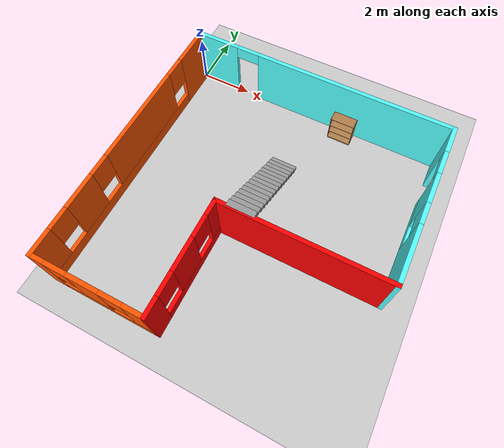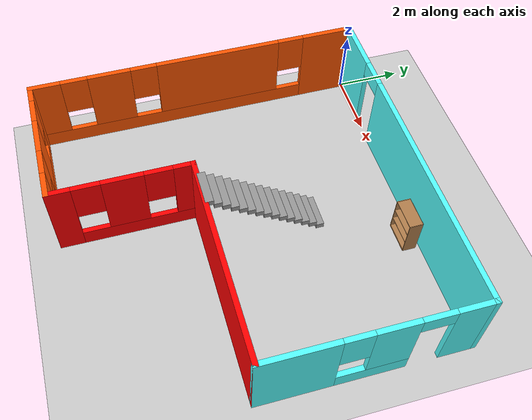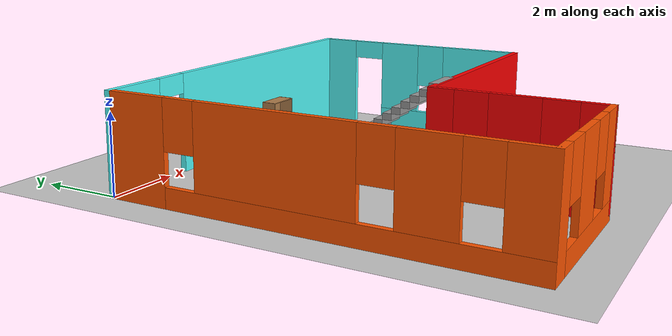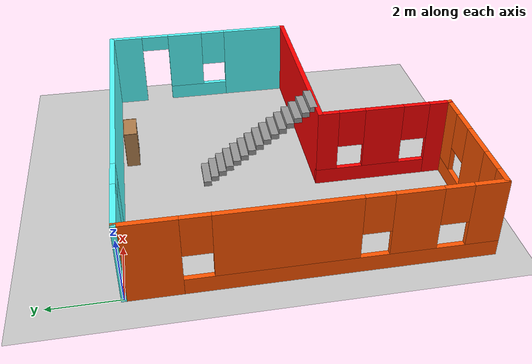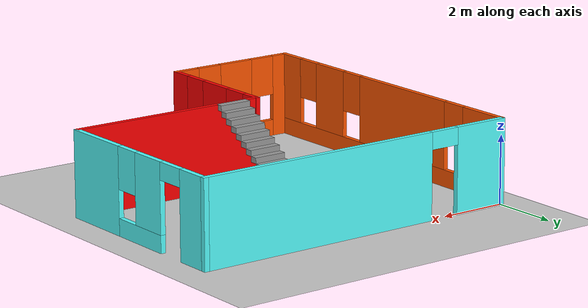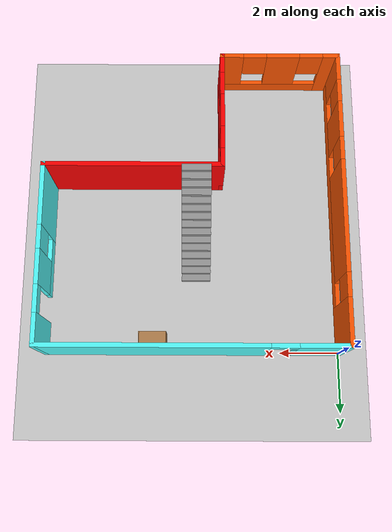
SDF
<sdf version="1.6">
 <world name="default">
  <model name="ground_plane">
   <static>1</static>
   <link name="link">
    <collision name="collision">
     <geometry><plane><normal>0 0 1</normal><size>100 100</size></plane></geometry>
     <surface>
      <contact><collide_bitmask>65535</collide_bitmask></contact>
      <friction><ode><mu>0.1</mu><mu2>0.1</mu2></ode></friction>
     </surface>
    </collision>
    <visual name="visual">
     <cast_shadows>0</cast_shadows>
     <geometry><plane><normal>0 0 1</normal><size>100 100</size></plane></geometry>
     <material>
      <script><uri>file://media/materials/scripts/gazebo.material</uri><name>Gazebo/Grey</name></script>
     </material>
    </visual>
   </link>
  </model>
  <model name="newworld">
   <pose>5 -5 0 0 -0 0</pose>
   <link name="Stairs_0">
    <visual name="Stairs_0_Visual_0">
     <pose>-0.121331 2.37416 0.083333 0 -0 0</pose>
     <geometry><box><size>1 0.233333 0.166667</size></box></geometry>
     <material>
      <script><uri>file://media/materials/scripts/gazebo.material</uri><name>Gazebo/Grey</name></script>
      <ambient>1 1 1 1</ambient>
     </material>
     <meta><layer>0</layer></meta>
    </visual>
    <collision name="Stairs_0_Collision_0">
     <geometry><box><size>1 0.233333 0.166667</size></box></geometry>
     <pose>-0.121331 2.37416 0.083333 0 -0 0</pose>
    </collision>
    <visual name="Stairs_0_Visual_1">
     <pose>-0.121331 2.14083 0.25 0 -0 0</pose>
     <geometry><box><size>1 0.233333 0.166667</size></box></geometry>
     <material>
      <script><uri>file://media/materials/scripts/gazebo.material</uri><name>Gazebo/Grey</name></script>
      <ambient>1 1 1 1</ambient>
     </material>
     <meta><layer>0</layer></meta>
    </visual>
    <collision name="Stairs_0_Collision_1">
     <geometry><box><size>1 0.233333 0.166667</size></box></geometry>
     <pose>-0.121331 2.14083 0.25 0 -0 0</pose>
    </collision>
    <visual name="Stairs_0_Visual_2">
     <pose>-0.121331 1.90749 0.416667 0 -0 0</pose>
     <geometry><box><size>1 0.233333 0.166667</size></box></geometry>
     <material>
      <script><uri>file://media/materials/scripts/gazebo.material</uri><name>Gazebo/Grey</name></script>
      <ambient>1 1 1 1</ambient>
     </material>
     <meta><layer>0</layer></meta>
    </visual>
    <collision name="Stairs_0_Collision_2">
     <geometry><box><size>1 0.233333 0.166667</size></box></geometry>
     <pose>-0.121331 1.90749 0.416667 0 -0 0</pose>
    </collision>
    <visual name="Stairs_0_Visual_3">
     <pose>-0.121331 1.67416 0.583333 0 -0 0</pose>
     <geometry><box><size>1 0.233333 0.166667</size></box></geometry>
     <material>
      <script><uri>file://media/materials/scripts/gazebo.material</uri><name>Gazebo/Grey</name></script>
      <ambient>1 1 1 1</ambient>
     </material>
     <meta><layer>0</layer></meta>
    </visual>
    <collision name="Stairs_0_Collision_3">
     <geometry><box><size>1 0.233333 0.166667</size></box></geometry>
     <pose>-0.121331 1.67416 0.583333 0 -0 0</pose>
    </collision>
    <visual name="Stairs_0_Visual_4">
     <pose>-0.121331 1.44083 0.75 0 -0 0</pose>
     <geometry><box><size>1 0.233333 0.166667</size></box></geometry>
     <material>
      <script><uri>file://media/materials/scripts/gazebo.material</uri><name>Gazebo/Grey</name></script>
      <ambient>1 1 1 1</ambient>
     </material>
     <meta><layer>0</layer></meta>
    </visual>
    <collision name="Stairs_0_Collision_4">
     <geometry><box><size>1 0.233333 0.166667</size></box></geometry>
     <pose>-0.121331 1.44083 0.75 0 -0 0</pose>
    </collision>
    <visual name="Stairs_0_Visual_5">
     <pose>-0.121331 1.20749 0.916667 0 -0 0</pose>
     <geometry><box><size>1 0.233333 0.166667</size></box></geometry>
     <material>
      <script><uri>file://media/materials/scripts/gazebo.material</uri><name>Gazebo/Grey</name></script>
      <ambient>1 1 1 1</ambient>
     </material>
     <meta><layer>0</layer></meta>
    </visual>
    <collision name="Stairs_0_Collision_5">
     <geometry><box><size>1 0.233333 0.166667</size></box></geometry>
     <pose>-0.121331 1.20749 0.916667 0 -0 0</pose>
    </collision>
    <visual name="Stairs_0_Visual_6">
     <pose>-0.121331 0.97416 1.08333 0 -0 0</pose>
     <geometry><box><size>1 0.233333 0.166667</size></box></geometry>
     <material>
      <script><uri>file://media/materials/scripts/gazebo.material</uri><name>Gazebo/Grey</name></script>
      <ambient>1 1 1 1</ambient>
     </material>
     <meta><layer>0</layer></meta>
    </visual>
    <collision name="Stairs_0_Collision_6">
     <geometry><box><size>1 0.233333 0.166667</size></box></geometry>
     <pose>-0.121331 0.97416 1.08333 0 -0 0</pose>
    </collision>
    <visual name="Stairs_0_Visual_7">
     <pose>-0.121331 0.740827 1.25 0 -0 0</pose>
     <geometry><box><size>1 0.233333 0.166667</size></box></geometry>
     <material>
      <script><uri>file://media/materials/scripts/gazebo.material</uri><name>Gazebo/Grey</name></script>
      <ambient>1 1 1 1</ambient>
     </material>
     <meta><layer>0</layer></meta>
    </visual>
    <collision name="Stairs_0_Collision_7">
     <geometry><box><size>1 0.233333 0.166667</size></box></geometry>
     <pose>-0.121331 0.740827 1.25 0 -0 0</pose>
    </collision>
    <visual name="Stairs_0_Visual_8">
     <pose>-0.121331 0.507494 1.41667 0 -0 0</pose>
     <geometry><box><size>1 0.233333 0.166667</size></box></geometry>
     <material>
      <script><uri>file://media/materials/scripts/gazebo.material</uri><name>Gazebo/Grey</name></script>
      <ambient>1 1 1 1</ambient>
     </material>
     <meta><layer>0</layer></meta>
    </visual>
    <collision name="Stairs_0_Collision_8">
     <geometry><box><size>1 0.233333 0.166667</size></box></geometry>
     <pose>-0.121331 0.507494 1.41667 0 -0 0</pose>
    </collision>
    <visual name="Stairs_0_Visual_9">
     <pose>-0.121331 0.274161 1.58333 0 -0 0</pose>
     <geometry><box><size>1 0.233333 0.166667</size></box></geometry>
     <material>
      <script><uri>file://media/materials/scripts/gazebo.material</uri><name>Gazebo/Grey</name></script>
      <ambient>1 1 1 1</ambient>
     </material>
     <meta><layer>0</layer></meta>
    </visual>
    <collision name="Stairs_0_Collision_9">
     <geometry><box><size>1 0.233333 0.166667</size></box></geometry>
     <pose>-0.121331 0.274161 1.58333 0 -0 0</pose>
    </collision>
    <visual name="Stairs_0_Visual_10">
     <pose>-0.121331 0.040827 1.75 0 -0 0</pose>
     <geometry><box><size>1 0.233333 0.166667</size></box></geometry>
     <material>
      <script><uri>file://media/materials/scripts/gazebo.material</uri><name>Gazebo/Grey</name></script>
      <ambient>1 1 1 1</ambient>
     </material>
     <meta><layer>0</layer></meta>
    </visual>
    <collision name="Stairs_0_Collision_10">
     <geometry><box><size>1 0.233333 0.166667</size></box></geometry>
     <pose>-0.121331 0.040827 1.75 0 -0 0</pose>
    </collision>
    <visual name="Stairs_0_Visual_11">
     <pose>-0.121331 -0.192506 1.91667 0 -0 0</pose>
     <geometry><box><size>1 0.233333 0.166667</size></box></geometry>
     <material>
      <script><uri>file://media/materials/scripts/gazebo.material</uri><name>Gazebo/Grey</name></script>
      <ambient>1 1 1 1</ambient>
     </material>
     <meta><layer>0</layer></meta>
    </visual>
    <collision name="Stairs_0_Collision_11">
     <geometry><box><size>1 0.233333 0.166667</size></box></geometry>
     <pose>-0.121331 -0.192506 1.91667 0 -0 0</pose>
    </collision>
    <visual name="Stairs_0_Visual_12">
     <pose>-0.121331 -0.425839 2.08333 0 -0 0</pose>
     <geometry><box><size>1 0.233333 0.166667</size></box></geometry>
     <material>
      <script><uri>file://media/materials/scripts/gazebo.material</uri><name>Gazebo/Grey</name></script>
      <ambient>1 1 1 1</ambient>
     </material>
     <meta><layer>0</layer></meta>
    </visual>
    <collision name="Stairs_0_Collision_12">
     <geometry><box><size>1 0.233333 0.166667</size></box></geometry>
     <pose>-0.121331 -0.425839 2.08333 0 -0 0</pose>
    </collision>
    <visual name="Stairs_0_Visual_13">
     <pose>-0.121331 -0.659173 2.25 0 -0 0</pose>
     <geometry><box><size>1 0.233333 0.166667</size></box></geometry>
     <material>
      <script><uri>file://media/materials/scripts/gazebo.material</uri><name>Gazebo/Grey</name></script>
      <ambient>1 1 1 1</ambient>
     </material>
     <meta><layer>0</layer></meta>
    </visual>
    <collision name="Stairs_0_Collision_13">
     <geometry><box><size>1 0.233333 0.166667</size></box></geometry>
     <pose>-0.121331 -0.659173 2.25 0 -0 0</pose>
    </collision>
    <visual name="Stairs_0_Visual_14">
     <pose>-0.121331 -0.892506 2.41667 0 -0 0</pose>
     <geometry><box><size>1 0.233333 0.166667</size></box></geometry>
     <material>
      <script><uri>file://media/materials/scripts/gazebo.material</uri><name>Gazebo/Grey</name></script>
      <ambient>1 1 1 1</ambient>
     </material>
     <meta><layer>0</layer></meta>
    </visual>
    <collision name="Stairs_0_Collision_14">
     <geometry><box><size>1 0.233333 0.166667</size></box></geometry>
     <pose>-0.121331 -0.892506 2.41667 0 -0 0</pose>
    </collision>
   </link>
   <link name="Wall_0">
    <pose>-5 0 0 0 0 -1.5708</pose>
    <visual name="Wall_0_Visual_0">
     <pose>-4.2609 0 1.25 0 -0 0</pose>
     <geometry><box><size>1.6282 0.15 2.5</size></box></geometry>
     <material>
      <script><uri>file://media/materials/scripts/gazebo.material</uri><name>Gazebo/Grey</name></script>
      <ambient>1 0.333333 0 1</ambient>
     </material>
     <meta><layer>0</layer></meta>
    </visual>
    <collision name="Wall_0_Collision_0">
     <geometry><box><size>1.6282 0.15 2.5</size></box></geometry>
     <pose>-4.2609 0 1.25 0 -0 0</pose>
    </collision>
    <visual name="Wall_0_Visual_1">
     <pose>0.814102 0 0.25 0 -0 0</pose>
     <geometry><box><size>8.52179 0.15 0.5</size></box></geometry>
     <material>
      <script><uri>file://media/materials/scripts/gazebo.material</uri><name>Gazebo/Grey</name></script>
      <ambient>1 0.333333 0 1</ambient>
     </material>
     <meta><layer>0</layer></meta>
    </visual>
    <collision name="Wall_0_Collision_1">
     <geometry><box><size>8.52179 0.15 0.5</size></box></geometry>
     <pose>0.814102 0 0.25 0 -0 0</pose>
    </collision>
    <visual name="Wall_0_Visual_2">
     <pose>-0.720599 0 1.5 0 -0 0</pose>
     <geometry><box><size>3.85239 0.15 2</size></box></geometry>
     <material>
      <script><uri>file://media/materials/scripts/gazebo.material</uri><name>Gazebo/Grey</name></script>
      <ambient>1 0.333333 0 1</ambient>
     </material>
     <meta><layer>0</layer></meta>
    </visual>
    <collision name="Wall_0_Collision_2">
     <geometry><box><size>3.85239 0.15 2</size></box></geometry>
     <pose>-0.720599 0 1.5 0 -0 0</pose>
    </collision>
    <visual name="Wall_0_Visual_3">
     <pose>2.65744 0 1.5 0 -0 0</pose>
     <geometry><box><size>1.30369 0.15 2</size></box></geometry>
     <material>
      <script><uri>file://media/materials/scripts/gazebo.material</uri><name>Gazebo/Grey</name></script>
      <ambient>1 0.333333 0 1</ambient>
     </material>
     <meta><layer>0</layer></meta>
    </visual>
    <collision name="Wall_0_Collision_3">
     <geometry><box><size>1.30369 0.15 2</size></box></geometry>
     <pose>2.65744 0 1.5 0 -0 0</pose>
    </collision>
    <visual name="Wall_0_Visual_4">
     <pose>4.59214 0 1.5 0 -0 0</pose>
     <geometry><box><size>0.965713 0.15 2</size></box></geometry>
     <material>
      <script><uri>file://media/materials/scripts/gazebo.material</uri><name>Gazebo/Grey</name></script>
      <ambient>1 0.333333 0 1</ambient>
     </material>
     <meta><layer>0</layer></meta>
    </visual>
    <collision name="Wall_0_Collision_4">
     <geometry><box><size>0.965713 0.15 2</size></box></geometry>
     <pose>4.59214 0 1.5 0 -0 0</pose>
    </collision>
    <visual name="Wall_0_Visual_5">
     <pose>-3.04679 0 1.9 0 -0 0</pose>
     <geometry><box><size>0.8 0.15 1.2</size></box></geometry>
     <material>
      <script><uri>file://media/materials/scripts/gazebo.material</uri><name>Gazebo/Grey</name></script>
      <ambient>1 0.333333 0 1</ambient>
     </material>
     <meta><layer>0</layer></meta>
    </visual>
    <collision name="Wall_0_Collision_5">
     <geometry><box><size>0.8 0.15 1.2</size></box></geometry>
     <pose>-3.04679 0 1.9 0 -0 0</pose>
    </collision>
    <visual name="Wall_0_Visual_6">
     <pose>1.6056 0 1.9 0 -0 0</pose>
     <geometry><box><size>0.8 0.15 1.2</size></box></geometry>
     <material>
      <script><uri>file://media/materials/scripts/gazebo.material</uri><name>Gazebo/Grey</name></script>
      <ambient>1 0.333333 0 1</ambient>
     </material>
     <meta><layer>0</layer></meta>
    </visual>
    <collision name="Wall_0_Collision_6">
     <geometry><box><size>0.8 0.15 1.2</size></box></geometry>
     <pose>1.6056 0 1.9 0 -0 0</pose>
    </collision>
    <visual name="Wall_0_Visual_7">
     <pose>3.70929 0 1.9 0 -0 0</pose>
     <geometry><box><size>0.8 0.15 1.2</size></box></geometry>
     <material>
      <script><uri>file://media/materials/scripts/gazebo.material</uri><name>Gazebo/Grey</name></script>
      <ambient>1 0.333333 0 1</ambient>
     </material>
     <meta><layer>0</layer></meta>
    </visual>
    <collision name="Wall_0_Collision_7">
     <geometry><box><size>0.8 0.15 1.2</size></box></geometry>
     <pose>3.70929 0 1.9 0 -0 0</pose>
    </collision>
   </link>
   <link name="Wall_1">
    <pose>-3 -5 0 0 -0 0</pose>
    <visual name="Wall_1_Visual_0">
     <pose>-1.78049 0 1.25 0 -0 0</pose>
     <geometry><box><size>0.589022 0.15 2.5</size></box></geometry>
     <material>
      <script><uri>file://media/materials/scripts/gazebo.material</uri><name>Gazebo/Grey</name></script>
      <ambient>1 0.333333 0 1</ambient>
     </material>
     <meta><layer>0</layer></meta>
    </visual>
    <collision name="Wall_1_Collision_0">
     <geometry><box><size>0.589022 0.15 2.5</size></box></geometry>
     <pose>-1.78049 0 1.25 0 -0 0</pose>
    </collision>
    <visual name="Wall_1_Visual_1">
     <pose>0.294511 0 0.25 0 -0 0</pose>
     <geometry><box><size>3.56098 0.15 0.5</size></box></geometry>
     <material>
      <script><uri>file://media/materials/scripts/gazebo.material</uri><name>Gazebo/Grey</name></script>
      <ambient>1 0.333333 0 1</ambient>
     </material>
     <meta><layer>0</layer></meta>
    </visual>
    <collision name="Wall_1_Collision_1">
     <geometry><box><size>3.56098 0.15 0.5</size></box></geometry>
     <pose>0.294511 0 0.25 0 -0 0</pose>
    </collision>
    <visual name="Wall_1_Visual_2">
     <pose>-0.115044 0 1.5 0 -0 0</pose>
     <geometry><box><size>1.14187 0.15 2</size></box></geometry>
     <material>
      <script><uri>file://media/materials/scripts/gazebo.material</uri><name>Gazebo/Grey</name></script>
      <ambient>1 0.333333 0 1</ambient>
     </material>
     <meta><layer>0</layer></meta>
    </visual>
    <collision name="Wall_1_Collision_2">
     <geometry><box><size>1.14187 0.15 2</size></box></geometry>
     <pose>-0.115044 0 1.5 0 -0 0</pose>
    </collision>
    <visual name="Wall_1_Visual_3">
     <pose>1.66545 0 1.5 0 -0 0</pose>
     <geometry><box><size>0.81911 0.15 2</size></box></geometry>
     <material>
      <script><uri>file://media/materials/scripts/gazebo.material</uri><name>Gazebo/Grey</name></script>
      <ambient>1 0.333333 0 1</ambient>
     </material>
     <meta><layer>0</layer></meta>
    </visual>
    <collision name="Wall_1_Collision_3">
     <geometry><box><size>0.81911 0.15 2</size></box></geometry>
     <pose>1.66545 0 1.5 0 -0 0</pose>
    </collision>
    <visual name="Wall_1_Visual_4">
     <pose>-1.08598 0 1.9 0 -0 0</pose>
     <geometry><box><size>0.8 0.15 1.2</size></box></geometry>
     <material>
      <script><uri>file://media/materials/scripts/gazebo.material</uri><name>Gazebo/Grey</name></script>
      <ambient>1 0.333333 0 1</ambient>
     </material>
     <meta><layer>0</layer></meta>
    </visual>
    <collision name="Wall_1_Collision_4">
     <geometry><box><size>0.8 0.15 1.2</size></box></geometry>
     <pose>-1.08598 0 1.9 0 -0 0</pose>
    </collision>
    <visual name="Wall_1_Visual_5">
     <pose>0.85589 0 1.9 0 -0 0</pose>
     <geometry><box><size>0.8 0.15 1.2</size></box></geometry>
     <material>
      <script><uri>file://media/materials/scripts/gazebo.material</uri><name>Gazebo/Grey</name></script>
      <ambient>1 0.333333 0 1</ambient>
     </material>
     <meta><layer>0</layer></meta>
    </visual>
    <collision name="Wall_1_Collision_5">
     <geometry><box><size>0.8 0.15 1.2</size></box></geometry>
     <pose>0.85589 0 1.9 0 -0 0</pose>
    </collision>
   </link>
   <link name="Wall_2">
    <pose>-1 -3 0 0 -0 1.5708</pose>
    <visual name="Wall_2_Visual_0">
     <pose>-1.71351 0 1.25 0 -0 0</pose>
     <geometry><box><size>0.72298 0.15 2.5</size></box></geometry>
     <material>
      <script><uri>file://media/materials/scripts/gazebo.material</uri><name>Gazebo/Grey</name></script>
      <ambient>1 0 0 1</ambient>
     </material>
     <meta><layer>0</layer></meta>
    </visual>
    <collision name="Wall_2_Collision_0">
     <geometry><box><size>0.72298 0.15 2.5</size></box></geometry>
     <pose>-1.71351 0 1.25 0 -0 0</pose>
    </collision>
    <visual name="Wall_2_Visual_1">
     <pose>0.36149 0 0.25 0 -0 0</pose>
     <geometry><box><size>3.42702 0.15 0.5</size></box></geometry>
     <material>
      <script><uri>file://media/materials/scripts/gazebo.material</uri><name>Gazebo/Grey</name></script>
      <ambient>1 0 0 1</ambient>
     </material>
     <meta><layer>0</layer></meta>
    </visual>
    <collision name="Wall_2_Collision_1">
     <geometry><box><size>3.42702 0.15 0.5</size></box></geometry>
     <pose>0.36149 0 0.25 0 -0 0</pose>
    </collision>
    <visual name="Wall_2_Visual_2">
     <pose>0.039142 0 1.5 0 -0 0</pose>
     <geometry><box><size>1.18232 0.15 2</size></box></geometry>
     <material>
      <script><uri>file://media/materials/scripts/gazebo.material</uri><name>Gazebo/Grey</name></script>
      <ambient>1 0 0 1</ambient>
     </material>
     <meta><layer>0</layer></meta>
    </visual>
    <collision name="Wall_2_Collision_2">
     <geometry><box><size>1.18232 0.15 2</size></box></geometry>
     <pose>0.039142 0 1.5 0 -0 0</pose>
    </collision>
    <visual name="Wall_2_Visual_3">
     <pose>1.75265 0 1.5 0 -0 0</pose>
     <geometry><box><size>0.644697 0.15 2</size></box></geometry>
     <material>
      <script><uri>file://media/materials/scripts/gazebo.material</uri><name>Gazebo/Grey</name></script>
      <ambient>1 0 0 1</ambient>
     </material>
     <meta><layer>0</layer></meta>
    </visual>
    <collision name="Wall_2_Collision_3">
     <geometry><box><size>0.644697 0.15 2</size></box></geometry>
     <pose>1.75265 0 1.5 0 -0 0</pose>
    </collision>
    <visual name="Wall_2_Visual_4">
     <pose>-0.95202 0 1.9 0 -0 0</pose>
     <geometry><box><size>0.8 0.15 1.2</size></box></geometry>
     <material>
      <script><uri>file://media/materials/scripts/gazebo.material</uri><name>Gazebo/Grey</name></script>
      <ambient>1 0 0 1</ambient>
     </material>
     <meta><layer>0</layer></meta>
    </visual>
    <collision name="Wall_2_Collision_4">
     <geometry><box><size>0.8 0.15 1.2</size></box></geometry>
     <pose>-0.95202 0 1.9 0 -0 0</pose>
    </collision>
    <visual name="Wall_2_Visual_5">
     <pose>1.0303 0 1.9 0 -0 0</pose>
     <geometry><box><size>0.8 0.15 1.2</size></box></geometry>
     <material>
      <script><uri>file://media/materials/scripts/gazebo.material</uri><name>Gazebo/Grey</name></script>
      <ambient>1 0 0 1</ambient>
     </material>
     <meta><layer>0</layer></meta>
    </visual>
    <collision name="Wall_2_Collision_5">
     <geometry><box><size>0.8 0.15 1.2</size></box></geometry>
     <pose>1.0303 0 1.9 0 -0 0</pose>
    </collision>
   </link>
   <link name="Wall_3">
    <collision name="Wall_3_Collision">
     <geometry><box><size>6.15 0.15 2.5</size></box></geometry>
     <pose>0 0 1.25 0 -0 0</pose>
    </collision>
    <visual name="Wall_3_Visual">
     <pose>0 0 1.25 0 -0 0</pose>
     <geometry><box><size>6.15 0.15 2.5</size></box></geometry>
     <material>
      <script><uri>file://media/materials/scripts/gazebo.material</uri><name>Gazebo/Grey</name></script>
      <ambient>1 0 0 1</ambient>
     </material>
     <meta><layer>0</layer></meta>
    </visual>
    <pose>2 -1 0 0 -0 0</pose>
   </link>
   <link name="Wall_4">
    <pose>5 2 0 0 -0 1.5708</pose>
    <visual name="Wall_4_Visual_0">
     <pose>-1.98276 0 1.25 0 -0 0</pose>
     <geometry><box><size>2.18448 0.15 2.5</size></box></geometry>
     <material>
      <script><uri>file://media/materials/scripts/gazebo.material</uri><name>Gazebo/Grey</name></script>
      <ambient>0.333333 1 1 1</ambient>
     </material>
     <meta><layer>0</layer></meta>
    </visual>
    <collision name="Wall_4_Collision_0">
     <geometry><box><size>2.18448 0.15 2.5</size></box></geometry>
     <pose>-1.98276 0 1.25 0 -0 0</pose>
    </collision>
    <visual name="Wall_4_Visual_1">
     <pose>2.52863 0 1.25 0 -0 0</pose>
     <geometry><box><size>1.09274 0.15 2.5</size></box></geometry>
     <material>
      <script><uri>file://media/materials/scripts/gazebo.material</uri><name>Gazebo/Grey</name></script>
      <ambient>0.333333 1 1 1</ambient>
     </material>
     <meta><layer>0</layer></meta>
    </visual>
    <collision name="Wall_4_Collision_1">
     <geometry><box><size>1.09274 0.15 2.5</size></box></geometry>
     <pose>2.52863 0 1.25 0 -0 0</pose>
    </collision>
    <visual name="Wall_4_Visual_2">
     <pose>0.095873 0 0.25 0 -0 0</pose>
     <geometry><box><size>1.97278 0.15 0.5</size></box></geometry>
     <material>
      <script><uri>file://media/materials/scripts/gazebo.material</uri><name>Gazebo/Grey</name></script>
      <ambient>0.333333 1 1 1</ambient>
     </material>
     <meta><layer>0</layer></meta>
    </visual>
    <collision name="Wall_4_Collision_2">
     <geometry><box><size>1.97278 0.15 0.5</size></box></geometry>
     <pose>0.095873 0 0.25 0 -0 0</pose>
    </collision>
    <visual name="Wall_4_Visual_3">
     <pose>0.495873 0 1.5 0 -0 0</pose>
     <geometry><box><size>1.17278 0.15 2</size></box></geometry>
     <material>
      <script><uri>file://media/materials/scripts/gazebo.material</uri><name>Gazebo/Grey</name></script>
      <ambient>0.333333 1 1 1</ambient>
     </material>
     <meta><layer>0</layer></meta>
    </visual>
    <collision name="Wall_4_Collision_3">
     <geometry><box><size>1.17278 0.15 2</size></box></geometry>
     <pose>0.495873 0 1.5 0 -0 0</pose>
    </collision>
    <visual name="Wall_4_Visual_4">
     <pose>-0.490517 0 1.9 0 -0 0</pose>
     <geometry><box><size>0.8 0.15 1.2</size></box></geometry>
     <material>
      <script><uri>file://media/materials/scripts/gazebo.material</uri><name>Gazebo/Grey</name></script>
      <ambient>0.333333 1 1 1</ambient>
     </material>
     <meta><layer>0</layer></meta>
    </visual>
    <collision name="Wall_4_Collision_4">
     <geometry><box><size>0.8 0.15 1.2</size></box></geometry>
     <pose>-0.490517 0 1.9 0 -0 0</pose>
    </collision>
    <visual name="Wall_4_Visual_5">
     <pose>1.53226 0 2.25 0 -0 0</pose>
     <geometry><box><size>0.9 0.15 0.5</size></box></geometry>
     <material>
      <script><uri>file://media/materials/scripts/gazebo.material</uri><name>Gazebo/Grey</name></script>
      <ambient>0.333333 1 1 1</ambient>
     </material>
     <meta><layer>0</layer></meta>
    </visual>
    <collision name="Wall_4_Collision_5">
     <geometry><box><size>0.9 0.15 0.5</size></box></geometry>
     <pose>1.53226 0 2.25 0 -0 0</pose>
    </collision>
   </link>
   <link name="Wall_5">
    <pose>0 5 0 0 -0 3.14159</pose>
    <visual name="Wall_5_Visual_0">
     <pose>-1.30612 0 1.25 0 -0 0</pose>
     <geometry><box><size>7.53777 0.15 2.5</size></box></geometry>
     <material>
      <script><uri>file://media/materials/scripts/gazebo.material</uri><name>Gazebo/Grey</name></script>
      <ambient>0.333333 1 1 1</ambient>
     </material>
     <meta><layer>0</layer></meta>
    </visual>
    <collision name="Wall_5_Collision_0">
     <geometry><box><size>7.53777 0.15 2.5</size></box></geometry>
     <pose>-1.30612 0 1.25 0 -0 0</pose>
    </collision>
    <visual name="Wall_5_Visual_1">
     <pose>4.21888 0 1.25 0 -0 0</pose>
     <geometry><box><size>1.71223 0.15 2.5</size></box></geometry>
     <material>
      <script><uri>file://media/materials/scripts/gazebo.material</uri><name>Gazebo/Grey</name></script>
      <ambient>0.333333 1 1 1</ambient>
     </material>
     <meta><layer>0</layer></meta>
    </visual>
    <collision name="Wall_5_Collision_1">
     <geometry><box><size>1.71223 0.15 2.5</size></box></geometry>
     <pose>4.21888 0 1.25 0 -0 0</pose>
    </collision>
    <visual name="Wall_5_Visual_2">
     <pose>2.91277 0 2.25 0 -0 0</pose>
     <geometry><box><size>0.9 0.15 0.5</size></box></geometry>
     <material>
      <script><uri>file://media/materials/scripts/gazebo.material</uri><name>Gazebo/Grey</name></script>
      <ambient>0.333333 1 1 1</ambient>
     </material>
     <meta><layer>0</layer></meta>
    </visual>
    <collision name="Wall_5_Collision_2">
     <geometry><box><size>0.9 0.15 0.5</size></box></geometry>
     <pose>2.91277 0 2.25 0 -0 0</pose>
    </collision>
   </link>
   <static>1</static>
  </model>
  <model name="bookshelf">
   <static>1</static>
   <link name="link">
    <inertial><mass>1</mass></inertial>
    <collision name="back">
     <pose>0 0.005 0.6 0 -0 0</pose>
     <geometry><box><size>0.9 0.01 1.2</size></box></geometry>
    </collision>
    <visual name="visual1">
     <pose>0 0.005 0.6 0 -0 0</pose>
     <geometry><box><size>0.9 0.01 1.2</size></box></geometry>
     <material>
      <script><uri>file://media/materials/scripts/gazebo.material</uri><name>Gazebo/Wood</name></script>
     </material>
    </visual>
    <collision name="left_side">
     <pose>0.45 -0.195 0.6 0 -0 0</pose>
     <geometry><box><size>0.02 0.4 1.2</size></box></geometry>
    </collision>
    <visual name="visual2">
     <pose>0.45 -0.195 0.6 0 -0 0</pose>
     <geometry><box><size>0.02 0.4 1.2</size></box></geometry>
     <material>
      <script><uri>file://media/materials/scripts/gazebo.material</uri><name>Gazebo/Wood</name></script>
     </material>
    </visual>
    <collision name="right_side">
     <pose>-0.45 -0.195 0.6 0 -0 0</pose>
     <geometry><box><size>0.02 0.4 1.2</size></box></geometry>
    </collision>
    <visual name="visual3">
     <pose>-0.45 -0.195 0.6 0 -0 0</pose>
     <geometry><box><size>0.02 0.4 1.2</size></box></geometry>
     <material>
      <script><uri>file://media/materials/scripts/gazebo.material</uri><name>Gazebo/Wood</name></script>
     </material>
    </visual>
    <collision name="bottom">
     <pose>0 -0.195 0.03 0 -0 0</pose>
     <geometry><box><size>0.88 0.4 0.06</size></box></geometry>
    </collision>
    <visual name="visual4">
     <pose>0 -0.195 0.03 0 -0 0</pose>
     <geometry><box><size>0.88 0.4 0.06</size></box></geometry>
     <material>
      <script><uri>file://media/materials/scripts/gazebo.material</uri><name>Gazebo/Wood</name></script>
     </material>
    </visual>
    <collision name="top">
     <pose>0 -0.195 1.19 0 -0 0</pose>
     <geometry><box><size>0.88 0.4 0.02</size></box></geometry>
    </collision>
    <visual name="visual5">
     <pose>0 -0.195 1.19 0 -0 0</pose>
     <geometry><box><size>0.88 0.4 0.02</size></box></geometry>
     <material>
      <script><uri>file://media/materials/scripts/gazebo.material</uri><name>Gazebo/Wood</name></script>
     </material>
    </visual>
    <collision name="low_shelf">
     <pose>0 -0.195 0.43 0 -0 0</pose>
     <geometry><box><size>0.88 0.4 0.02</size></box></geometry>
    </collision>
    <visual name="visual6">
     <pose>0 -0.195 0.43 0 -0 0</pose>
     <geometry><box><size>0.88 0.4 0.02</size></box></geometry>
     <material>
      <script><uri>file://media/materials/scripts/gazebo.material</uri><name>Gazebo/Wood</name></script>
     </material>
    </visual>
    <collision name="high_shelf">
     <pose>0 -0.195 0.8 0 -0 0</pose>
     <geometry><box><size>0.88 0.4 0.02</size></box></geometry>
    </collision>
    <visual name="visual7">
     <pose>0 -0.195 0.8 0 -0 0</pose>
     <geometry><box><size>0.88 0.4 0.02</size></box></geometry>
     <material>
      <script><uri>file://media/materials/scripts/gazebo.material</uri><name>Gazebo/Wood</name></script>
     </material>
    </visual>
   </link>
   <pose>6.32771 -0.204384 0 0 -0 0</pose>
  </model>
 </world>
</sdf>
